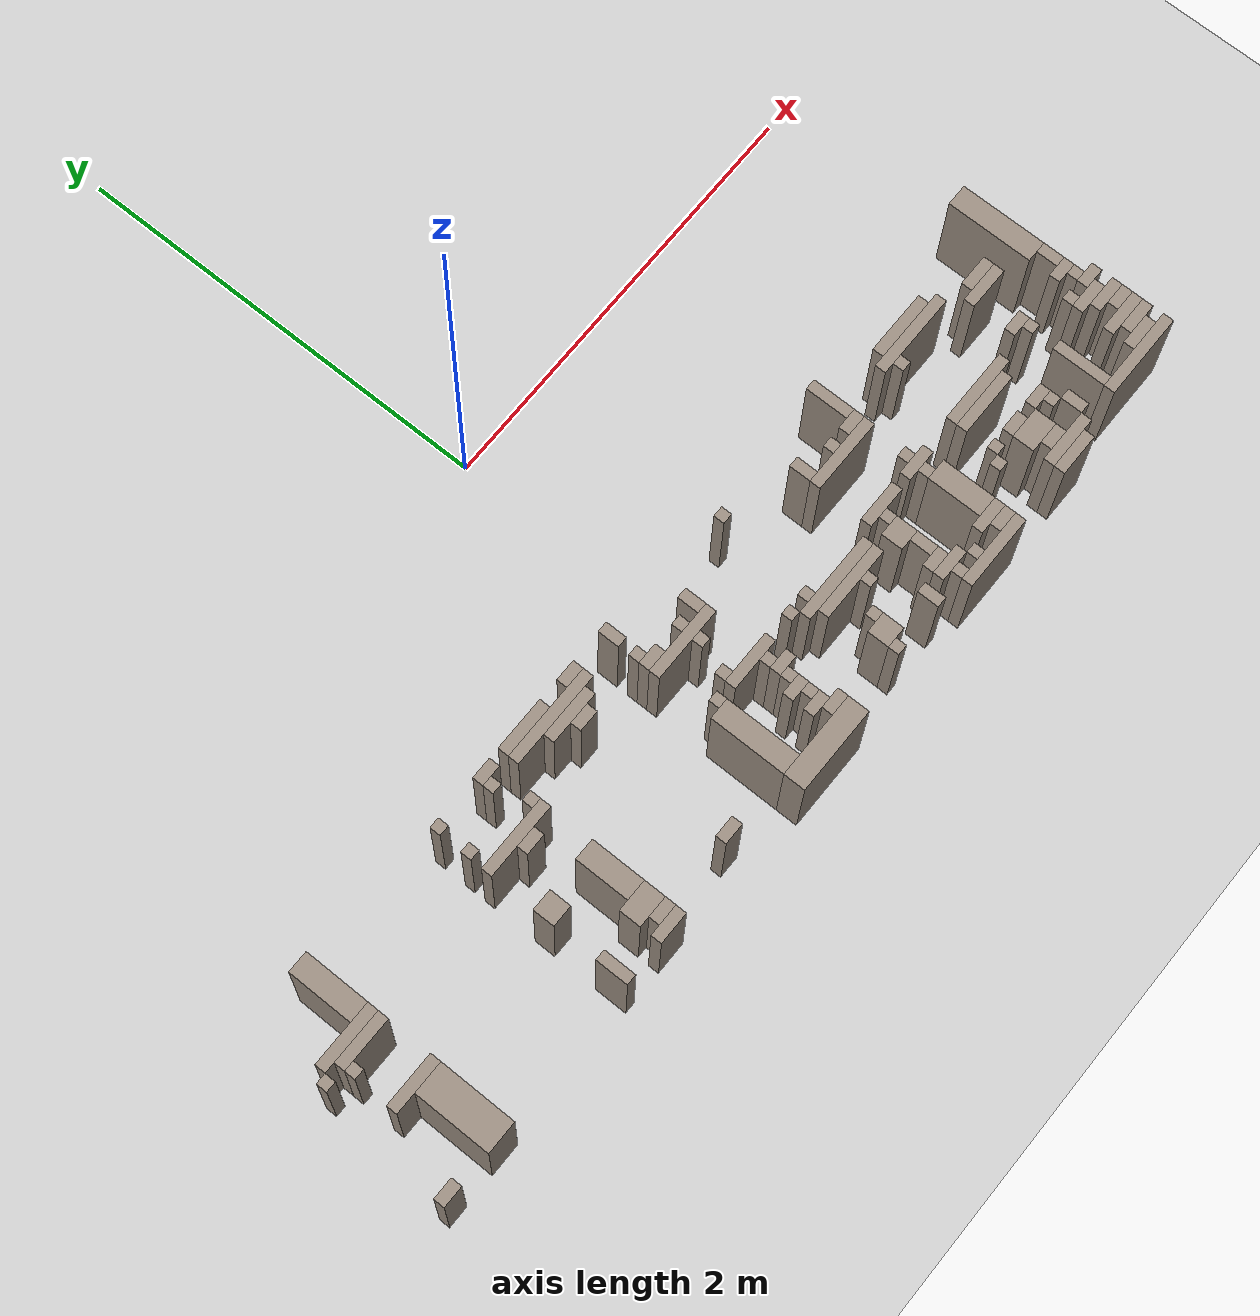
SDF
<sdf version="1.8">
 <world name="sala_real">
  <model name="ground_plane">
   <static>true</static>
   <link name="link">
    <collision name="col">
     <geometry><plane><normal>0 0 1</normal><size>100 100</size></plane></geometry>
    </collision>
    <visual name="vis">
     <geometry><plane><normal>0 0 1</normal><size>100 100</size></plane></geometry>
     <material><ambient>0.8 0.8 0.8 1</ambient><diffuse>0.8 0.8 0.8 1</diffuse></material>
    </visual>
   </link>
  </model>
  <model name="wall_206">
   <static>true</static>
   <pose>-1.310 -0.988 0.250 0 0 0</pose>
   <link name="link">
    <collision name="col"><geometry><box><size>0.050 0.050 0.500</size></box></geometry></collision>
    <visual name="vis">
     <geometry><box><size>0.050 0.050 0.500</size></box></geometry>
     <material><ambient>0.6 0.55 0.5 1</ambient><diffuse>0.6 0.55 0.5 1</diffuse></material>
    </visual>
   </link>
  </model>
  <model name="wall_207">
   <static>true</static>
   <pose>-0.310 -1.013 0.250 0 0 0</pose>
   <link name="link">
    <collision name="col"><geometry><box><size>0.050 0.100 0.500</size></box></geometry></collision>
    <visual name="vis">
     <geometry><box><size>0.050 0.100 0.500</size></box></geometry>
     <material><ambient>0.6 0.55 0.5 1</ambient><diffuse>0.6 0.55 0.5 1</diffuse></material>
    </visual>
   </link>
  </model>
  <model name="wall_217">
   <static>true</static>
   <pose>-0.110 -1.188 0.250 0 0 0</pose>
   <link name="link">
    <collision name="col"><geometry><box><size>0.050 0.050 0.500</size></box></geometry></collision>
    <visual name="vis">
     <geometry><box><size>0.050 0.050 0.500</size></box></geometry>
     <material><ambient>0.6 0.55 0.5 1</ambient><diffuse>0.6 0.55 0.5 1</diffuse></material>
    </visual>
   </link>
  </model>
  <model name="wall_219">
   <static>true</static>
   <pose>0.990 -1.063 0.250 0 0 0</pose>
   <link name="link">
    <collision name="col"><geometry><box><size>0.050 0.200 0.500</size></box></geometry></collision>
    <visual name="vis">
     <geometry><box><size>0.050 0.200 0.500</size></box></geometry>
     <material><ambient>0.6 0.55 0.5 1</ambient><diffuse>0.6 0.55 0.5 1</diffuse></material>
    </visual>
   </link>
  </model>
  <model name="wall_221">
   <static>true</static>
   <pose>2.015 -1.113 0.250 0 0 0</pose>
   <link name="link">
    <collision name="col"><geometry><box><size>0.100 0.400 0.500</size></box></geometry></collision>
    <visual name="vis">
     <geometry><box><size>0.100 0.400 0.500</size></box></geometry>
     <material><ambient>0.6 0.55 0.5 1</ambient><diffuse>0.6 0.55 0.5 1</diffuse></material>
    </visual>
   </link>
  </model>
  <model name="wall_223">
   <static>true</static>
   <pose>-1.035 -0.988 0.250 0 0 0</pose>
   <link name="link">
    <collision name="col"><geometry><box><size>0.100 0.050 0.500</size></box></geometry></collision>
    <visual name="vis">
     <geometry><box><size>0.100 0.050 0.500</size></box></geometry>
     <material><ambient>0.6 0.55 0.5 1</ambient><diffuse>0.6 0.55 0.5 1</diffuse></material>
    </visual>
   </link>
  </model>
  <model name="wall_228">
   <static>true</static>
   <pose>2.040 -1.363 0.250 0 0 0</pose>
   <link name="link">
    <collision name="col"><geometry><box><size>0.050 0.100 0.500</size></box></geometry></collision>
    <visual name="vis">
     <geometry><box><size>0.050 0.100 0.500</size></box></geometry>
     <material><ambient>0.6 0.55 0.5 1</ambient><diffuse>0.6 0.55 0.5 1</diffuse></material>
    </visual>
   </link>
  </model>
  <model name="wall_231">
   <static>true</static>
   <pose>-2.110 -1.288 0.250 0 0 0</pose>
   <link name="link">
    <collision name="col"><geometry><box><size>0.250 0.050 0.500</size></box></geometry></collision>
    <visual name="vis">
     <geometry><box><size>0.250 0.050 0.500</size></box></geometry>
     <material><ambient>0.6 0.55 0.5 1</ambient><diffuse>0.6 0.55 0.5 1</diffuse></material>
    </visual>
   </link>
  </model>
  <model name="wall_232">
   <static>true</static>
   <pose>-0.285 -1.188 0.250 0 0 0</pose>
   <link name="link">
    <collision name="col"><geometry><box><size>0.100 0.050 0.500</size></box></geometry></collision>
    <visual name="vis">
     <geometry><box><size>0.100 0.050 0.500</size></box></geometry>
     <material><ambient>0.6 0.55 0.5 1</ambient><diffuse>0.6 0.55 0.5 1</diffuse></material>
    </visual>
   </link>
  </model>
  <model name="wall_233">
   <static>true</static>
   <pose>-0.010 -1.163 0.250 0 0 0</pose>
   <link name="link">
    <collision name="col"><geometry><box><size>0.050 0.100 0.500</size></box></geometry></collision>
    <visual name="vis">
     <geometry><box><size>0.050 0.100 0.500</size></box></geometry>
     <material><ambient>0.6 0.55 0.5 1</ambient><diffuse>0.6 0.55 0.5 1</diffuse></material>
    </visual>
   </link>
  </model>
  <model name="wall_235">
   <static>true</static>
   <pose>0.990 -1.438 0.250 0 0 0</pose>
   <link name="link">
    <collision name="col"><geometry><box><size>0.050 0.050 0.500</size></box></geometry></collision>
    <visual name="vis">
     <geometry><box><size>0.050 0.050 0.500</size></box></geometry>
     <material><ambient>0.6 0.55 0.5 1</ambient><diffuse>0.6 0.55 0.5 1</diffuse></material>
    </visual>
   </link>
  </model>
  <model name="wall_240">
   <static>true</static>
   <pose>-0.010 -1.538 0.250 0 0 0</pose>
   <link name="link">
    <collision name="col"><geometry><box><size>0.050 0.050 0.500</size></box></geometry></collision>
    <visual name="vis">
     <geometry><box><size>0.050 0.050 0.500</size></box></geometry>
     <material><ambient>0.6 0.55 0.5 1</ambient><diffuse>0.6 0.55 0.5 1</diffuse></material>
    </visual>
   </link>
  </model>
  <model name="wall_241">
   <static>true</static>
   <pose>1.740 -1.488 0.250 0 0 0</pose>
   <link name="link">
    <collision name="col"><geometry><box><size>0.050 0.050 0.500</size></box></geometry></collision>
    <visual name="vis">
     <geometry><box><size>0.050 0.050 0.500</size></box></geometry>
     <material><ambient>0.6 0.55 0.5 1</ambient><diffuse>0.6 0.55 0.5 1</diffuse></material>
    </visual>
   </link>
  </model>
  <model name="wall_244">
   <static>true</static>
   <pose>0.740 -1.538 0.250 0 0 0</pose>
   <link name="link">
    <collision name="col"><geometry><box><size>0.050 0.050 0.500</size></box></geometry></collision>
    <visual name="vis">
     <geometry><box><size>0.050 0.050 0.500</size></box></geometry>
     <material><ambient>0.6 0.55 0.5 1</ambient><diffuse>0.6 0.55 0.5 1</diffuse></material>
    </visual>
   </link>
  </model>
  <model name="wall_245">
   <static>true</static>
   <pose>2.065 -1.538 0.250 0 0 0</pose>
   <link name="link">
    <collision name="col"><geometry><box><size>0.100 0.050 0.500</size></box></geometry></collision>
    <visual name="vis">
     <geometry><box><size>0.100 0.050 0.500</size></box></geometry>
     <material><ambient>0.6 0.55 0.5 1</ambient><diffuse>0.6 0.55 0.5 1</diffuse></material>
    </visual>
   </link>
  </model>
  <model name="wall_247">
   <static>true</static>
   <pose>-0.010 -1.638 0.250 0 0 0</pose>
   <link name="link">
    <collision name="col"><geometry><box><size>0.050 0.050 0.500</size></box></geometry></collision>
    <visual name="vis">
     <geometry><box><size>0.050 0.050 0.500</size></box></geometry>
     <material><ambient>0.6 0.55 0.5 1</ambient><diffuse>0.6 0.55 0.5 1</diffuse></material>
    </visual>
   </link>
  </model>
  <model name="wall_250">
   <static>true</static>
   <pose>-1.310 -1.138 0.250 0 0 0</pose>
   <link name="link">
    <collision name="col"><geometry><box><size>0.050 0.050 0.500</size></box></geometry></collision>
    <visual name="vis">
     <geometry><box><size>0.050 0.050 0.500</size></box></geometry>
     <material><ambient>0.6 0.55 0.5 1</ambient><diffuse>0.6 0.55 0.5 1</diffuse></material>
    </visual>
   </link>
  </model>
  <model name="wall_251">
   <static>true</static>
   <pose>-0.035 -1.688 0.250 0 0 0</pose>
   <link name="link">
    <collision name="col"><geometry><box><size>0.100 0.050 0.500</size></box></geometry></collision>
    <visual name="vis">
     <geometry><box><size>0.100 0.050 0.500</size></box></geometry>
     <material><ambient>0.6 0.55 0.5 1</ambient><diffuse>0.6 0.55 0.5 1</diffuse></material>
    </visual>
   </link>
  </model>
  <model name="wall_253">
   <static>true</static>
   <pose>0.715 -1.613 0.250 0 0 0</pose>
   <link name="link">
    <collision name="col"><geometry><box><size>0.100 0.100 0.500</size></box></geometry></collision>
    <visual name="vis">
     <geometry><box><size>0.100 0.100 0.500</size></box></geometry>
     <material><ambient>0.6 0.55 0.5 1</ambient><diffuse>0.6 0.55 0.5 1</diffuse></material>
    </visual>
   </link>
  </model>
  <model name="wall_255">
   <static>true</static>
   <pose>2.040 -1.638 0.250 0 0 0</pose>
   <link name="link">
    <collision name="col"><geometry><box><size>0.150 0.050 0.500</size></box></geometry></collision>
    <visual name="vis">
     <geometry><box><size>0.150 0.050 0.500</size></box></geometry>
     <material><ambient>0.6 0.55 0.5 1</ambient><diffuse>0.6 0.55 0.5 1</diffuse></material>
    </visual>
   </link>
  </model>
  <model name="wall_257">
   <static>true</static>
   <pose>-1.035 -1.588 0.250 0 0 0</pose>
   <link name="link">
    <collision name="col"><geometry><box><size>0.100 0.250 0.500</size></box></geometry></collision>
    <visual name="vis">
     <geometry><box><size>0.100 0.250 0.500</size></box></geometry>
     <material><ambient>0.6 0.55 0.5 1</ambient><diffuse>0.6 0.55 0.5 1</diffuse></material>
    </visual>
   </link>
  </model>
  <model name="wall_258">
   <static>true</static>
   <pose>-0.635 -1.138 0.250 0 0 0</pose>
   <link name="link">
    <collision name="col"><geometry><box><size>0.100 0.050 0.500</size></box></geometry></collision>
    <visual name="vis">
     <geometry><box><size>0.100 0.050 0.500</size></box></geometry>
     <material><ambient>0.6 0.55 0.5 1</ambient><diffuse>0.6 0.55 0.5 1</diffuse></material>
    </visual>
   </link>
  </model>
  <model name="wall_259">
   <static>true</static>
   <pose>0.015 -1.588 0.250 0 0 0</pose>
   <link name="link">
    <collision name="col"><geometry><box><size>0.100 0.050 0.500</size></box></geometry></collision>
    <visual name="vis">
     <geometry><box><size>0.100 0.050 0.500</size></box></geometry>
     <material><ambient>0.6 0.55 0.5 1</ambient><diffuse>0.6 0.55 0.5 1</diffuse></material>
    </visual>
   </link>
  </model>
  <model name="wall_260">
   <static>true</static>
   <pose>0.990 -1.488 0.250 0 0 0</pose>
   <link name="link">
    <collision name="col"><geometry><box><size>0.150 0.050 0.500</size></box></geometry></collision>
    <visual name="vis">
     <geometry><box><size>0.150 0.050 0.500</size></box></geometry>
     <material><ambient>0.6 0.55 0.5 1</ambient><diffuse>0.6 0.55 0.5 1</diffuse></material>
    </visual>
   </link>
  </model>
  <model name="wall_262">
   <static>true</static>
   <pose>1.990 -1.588 0.250 0 0 0</pose>
   <link name="link">
    <collision name="col"><geometry><box><size>0.150 0.050 0.500</size></box></geometry></collision>
    <visual name="vis">
     <geometry><box><size>0.150 0.050 0.500</size></box></geometry>
     <material><ambient>0.6 0.55 0.5 1</ambient><diffuse>0.6 0.55 0.5 1</diffuse></material>
    </visual>
   </link>
  </model>
  <model name="wall_265">
   <static>true</static>
   <pose>-1.060 -1.763 0.250 0 0 0</pose>
   <link name="link">
    <collision name="col"><geometry><box><size>0.150 0.100 0.500</size></box></geometry></collision>
    <visual name="vis">
     <geometry><box><size>0.150 0.100 0.500</size></box></geometry>
     <material><ambient>0.6 0.55 0.5 1</ambient><diffuse>0.6 0.55 0.5 1</diffuse></material>
    </visual>
   </link>
  </model>
  <model name="wall_266">
   <static>true</static>
   <pose>0.340 -1.038 0.250 0 0 0</pose>
   <link name="link">
    <collision name="col"><geometry><box><size>0.050 0.050 0.500</size></box></geometry></collision>
    <visual name="vis">
     <geometry><box><size>0.050 0.050 0.500</size></box></geometry>
     <material><ambient>0.6 0.55 0.5 1</ambient><diffuse>0.6 0.55 0.5 1</diffuse></material>
    </visual>
   </link>
  </model>
  <model name="wall_267">
   <static>true</static>
   <pose>0.740 -1.713 0.250 0 0 0</pose>
   <link name="link">
    <collision name="col"><geometry><box><size>0.050 0.100 0.500</size></box></geometry></collision>
    <visual name="vis">
     <geometry><box><size>0.050 0.100 0.500</size></box></geometry>
     <material><ambient>0.6 0.55 0.5 1</ambient><diffuse>0.6 0.55 0.5 1</diffuse></material>
    </visual>
   </link>
  </model>
  <model name="wall_268">
   <static>true</static>
   <pose>0.840 -1.188 0.250 0 0 0</pose>
   <link name="link">
    <collision name="col"><geometry><box><size>0.050 0.050 0.500</size></box></geometry></collision>
    <visual name="vis">
     <geometry><box><size>0.050 0.050 0.500</size></box></geometry>
     <material><ambient>0.6 0.55 0.5 1</ambient><diffuse>0.6 0.55 0.5 1</diffuse></material>
    </visual>
   </link>
  </model>
  <model name="wall_269">
   <static>true</static>
   <pose>1.015 -1.688 0.250 0 0 0</pose>
   <link name="link">
    <collision name="col"><geometry><box><size>0.100 0.250 0.500</size></box></geometry></collision>
    <visual name="vis">
     <geometry><box><size>0.100 0.250 0.500</size></box></geometry>
     <material><ambient>0.6 0.55 0.5 1</ambient><diffuse>0.6 0.55 0.5 1</diffuse></material>
    </visual>
   </link>
  </model>
  <model name="wall_273">
   <static>true</static>
   <pose>-1.160 -1.238 0.250 0 0 0</pose>
   <link name="link">
    <collision name="col"><geometry><box><size>0.350 0.050 0.500</size></box></geometry></collision>
    <visual name="vis">
     <geometry><box><size>0.350 0.050 0.500</size></box></geometry>
     <material><ambient>0.6 0.55 0.5 1</ambient><diffuse>0.6 0.55 0.5 1</diffuse></material>
    </visual>
   </link>
  </model>
  <model name="wall_274">
   <static>true</static>
   <pose>0.365 -1.813 0.250 0 0 0</pose>
   <link name="link">
    <collision name="col"><geometry><box><size>0.100 0.100 0.500</size></box></geometry></collision>
    <visual name="vis">
     <geometry><box><size>0.100 0.100 0.500</size></box></geometry>
     <material><ambient>0.6 0.55 0.5 1</ambient><diffuse>0.6 0.55 0.5 1</diffuse></material>
    </visual>
   </link>
  </model>
  <model name="wall_279">
   <static>true</static>
   <pose>1.390 -1.763 0.250 0 0 0</pose>
   <link name="link">
    <collision name="col"><geometry><box><size>0.150 0.100 0.500</size></box></geometry></collision>
    <visual name="vis">
     <geometry><box><size>0.150 0.100 0.500</size></box></geometry>
     <material><ambient>0.6 0.55 0.5 1</ambient><diffuse>0.6 0.55 0.5 1</diffuse></material>
    </visual>
   </link>
  </model>
  <model name="wall_285">
   <static>true</static>
   <pose>-2.335 -1.888 0.250 0 0 0</pose>
   <link name="link">
    <collision name="col"><geometry><box><size>0.100 0.050 0.500</size></box></geometry></collision>
    <visual name="vis">
     <geometry><box><size>0.100 0.050 0.500</size></box></geometry>
     <material><ambient>0.6 0.55 0.5 1</ambient><diffuse>0.6 0.55 0.5 1</diffuse></material>
    </visual>
   </link>
  </model>
  <model name="wall_323">
   <static>true</static>
   <pose>1.715 -1.438 0.250 0 0 0</pose>
   <link name="link">
    <collision name="col"><geometry><box><size>0.100 0.050 0.500</size></box></geometry></collision>
    <visual name="vis">
     <geometry><box><size>0.100 0.050 0.500</size></box></geometry>
     <material><ambient>0.6 0.55 0.5 1</ambient><diffuse>0.6 0.55 0.5 1</diffuse></material>
    </visual>
   </link>
  </model>
  <model name="wall_375">
   <static>true</static>
   <pose>1.540 -1.738 0.250 0 0 0</pose>
   <link name="link">
    <collision name="col"><geometry><box><size>0.050 0.050 0.500</size></box></geometry></collision>
    <visual name="vis">
     <geometry><box><size>0.050 0.050 0.500</size></box></geometry>
     <material><ambient>0.6 0.55 0.5 1</ambient><diffuse>0.6 0.55 0.5 1</diffuse></material>
    </visual>
   </link>
  </model>
  <model name="wall_376">
   <static>true</static>
   <pose>-0.535 -0.988 0.250 0 0 0</pose>
   <link name="link">
    <collision name="col"><geometry><box><size>0.100 0.050 0.500</size></box></geometry></collision>
    <visual name="vis">
     <geometry><box><size>0.100 0.050 0.500</size></box></geometry>
     <material><ambient>0.6 0.55 0.5 1</ambient><diffuse>0.6 0.55 0.5 1</diffuse></material>
    </visual>
   </link>
  </model>
  <model name="wall_377">
   <static>true</static>
   <pose>1.940 -1.538 0.250 0 0 0</pose>
   <link name="link">
    <collision name="col"><geometry><box><size>0.050 0.050 0.500</size></box></geometry></collision>
    <visual name="vis">
     <geometry><box><size>0.050 0.050 0.500</size></box></geometry>
     <material><ambient>0.6 0.55 0.5 1</ambient><diffuse>0.6 0.55 0.5 1</diffuse></material>
    </visual>
   </link>
  </model>
  <model name="wall_386">
   <static>true</static>
   <pose>-0.310 -1.138 0.250 0 0 0</pose>
   <link name="link">
    <collision name="col"><geometry><box><size>0.050 0.050 0.500</size></box></geometry></collision>
    <visual name="vis">
     <geometry><box><size>0.050 0.050 0.500</size></box></geometry>
     <material><ambient>0.6 0.55 0.5 1</ambient><diffuse>0.6 0.55 0.5 1</diffuse></material>
    </visual>
   </link>
  </model>
  <model name="wall_393">
   <static>true</static>
   <pose>-2.310 -1.288 0.250 0 0 0</pose>
   <link name="link">
    <collision name="col"><geometry><box><size>0.050 0.050 0.500</size></box></geometry></collision>
    <visual name="vis">
     <geometry><box><size>0.050 0.050 0.500</size></box></geometry>
     <material><ambient>0.6 0.55 0.5 1</ambient><diffuse>0.6 0.55 0.5 1</diffuse></material>
    </visual>
   </link>
  </model>
  <model name="wall_412">
   <static>true</static>
   <pose>-1.010 -1.188 0.250 0 0 0</pose>
   <link name="link">
    <collision name="col"><geometry><box><size>0.050 0.050 0.500</size></box></geometry></collision>
    <visual name="vis">
     <geometry><box><size>0.050 0.050 0.500</size></box></geometry>
     <material><ambient>0.6 0.55 0.5 1</ambient><diffuse>0.6 0.55 0.5 1</diffuse></material>
    </visual>
   </link>
  </model>
  <model name="wall_433">
   <static>true</static>
   <pose>0.340 -1.888 0.250 0 0 0</pose>
   <link name="link">
    <collision name="col"><geometry><box><size>0.050 0.050 0.500</size></box></geometry></collision>
    <visual name="vis">
     <geometry><box><size>0.050 0.050 0.500</size></box></geometry>
     <material><ambient>0.6 0.55 0.5 1</ambient><diffuse>0.6 0.55 0.5 1</diffuse></material>
    </visual>
   </link>
  </model>
  <model name="wall_455">
   <static>true</static>
   <pose>0.290 -1.488 0.250 0 0 0</pose>
   <link name="link">
    <collision name="col"><geometry><box><size>0.050 0.050 0.500</size></box></geometry></collision>
    <visual name="vis">
     <geometry><box><size>0.050 0.050 0.500</size></box></geometry>
     <material><ambient>0.6 0.55 0.5 1</ambient><diffuse>0.6 0.55 0.5 1</diffuse></material>
    </visual>
   </link>
  </model>
  <model name="wall_456">
   <static>true</static>
   <pose>0.390 -1.738 0.250 0 0 0</pose>
   <link name="link">
    <collision name="col"><geometry><box><size>0.050 0.050 0.500</size></box></geometry></collision>
    <visual name="vis">
     <geometry><box><size>0.050 0.050 0.500</size></box></geometry>
     <material><ambient>0.6 0.55 0.5 1</ambient><diffuse>0.6 0.55 0.5 1</diffuse></material>
    </visual>
   </link>
  </model>
  <model name="wall_481">
   <static>true</static>
   <pose>-0.635 -1.838 0.250 0 0 0</pose>
   <link name="link">
    <collision name="col"><geometry><box><size>0.100 0.050 0.500</size></box></geometry></collision>
    <visual name="vis">
     <geometry><box><size>0.100 0.050 0.500</size></box></geometry>
     <material><ambient>0.6 0.55 0.5 1</ambient><diffuse>0.6 0.55 0.5 1</diffuse></material>
    </visual>
   </link>
  </model>
  <model name="wall_490">
   <static>true</static>
   <pose>-1.035 -1.838 0.250 0 0 0</pose>
   <link name="link">
    <collision name="col"><geometry><box><size>0.100 0.050 0.500</size></box></geometry></collision>
    <visual name="vis">
     <geometry><box><size>0.100 0.050 0.500</size></box></geometry>
     <material><ambient>0.6 0.55 0.5 1</ambient><diffuse>0.6 0.55 0.5 1</diffuse></material>
    </visual>
   </link>
  </model>
  <model name="wall_497">
   <static>true</static>
   <pose>-1.310 -1.838 0.250 0 0 0</pose>
   <link name="link">
    <collision name="col"><geometry><box><size>0.050 0.150 0.500</size></box></geometry></collision>
    <visual name="vis">
     <geometry><box><size>0.050 0.150 0.500</size></box></geometry>
     <material><ambient>0.6 0.55 0.5 1</ambient><diffuse>0.6 0.55 0.5 1</diffuse></material>
    </visual>
   </link>
  </model>
  <model name="wall_514">
   <static>true</static>
   <pose>2.015 -1.438 0.250 0 0 0</pose>
   <link name="link">
    <collision name="col"><geometry><box><size>0.100 0.050 0.500</size></box></geometry></collision>
    <visual name="vis">
     <geometry><box><size>0.100 0.050 0.500</size></box></geometry>
     <material><ambient>0.6 0.55 0.5 1</ambient><diffuse>0.6 0.55 0.5 1</diffuse></material>
    </visual>
   </link>
  </model>
  <model name="wall_518">
   <static>true</static>
   <pose>1.515 -1.688 0.250 0 0 0</pose>
   <link name="link">
    <collision name="col"><geometry><box><size>0.100 0.050 0.500</size></box></geometry></collision>
    <visual name="vis">
     <geometry><box><size>0.100 0.050 0.500</size></box></geometry>
     <material><ambient>0.6 0.55 0.5 1</ambient><diffuse>0.6 0.55 0.5 1</diffuse></material>
    </visual>
   </link>
  </model>
  <model name="wall_527">
   <static>true</static>
   <pose>-2.210 -1.338 0.250 0 0 0</pose>
   <link name="link">
    <collision name="col"><geometry><box><size>0.050 0.050 0.500</size></box></geometry></collision>
    <visual name="vis">
     <geometry><box><size>0.050 0.050 0.500</size></box></geometry>
     <material><ambient>0.6 0.55 0.5 1</ambient><diffuse>0.6 0.55 0.5 1</diffuse></material>
    </visual>
   </link>
  </model>
  <model name="wall_539">
   <static>true</static>
   <pose>-1.285 -1.513 0.250 0 0 0</pose>
   <link name="link">
    <collision name="col"><geometry><box><size>0.100 0.100 0.500</size></box></geometry></collision>
    <visual name="vis">
     <geometry><box><size>0.100 0.100 0.500</size></box></geometry>
     <material><ambient>0.6 0.55 0.5 1</ambient><diffuse>0.6 0.55 0.5 1</diffuse></material>
    </visual>
   </link>
  </model>
  <model name="wall_543">
   <static>true</static>
   <pose>2.065 -1.688 0.250 0 0 0</pose>
   <link name="link">
    <collision name="col"><geometry><box><size>0.100 0.050 0.500</size></box></geometry></collision>
    <visual name="vis">
     <geometry><box><size>0.100 0.050 0.500</size></box></geometry>
     <material><ambient>0.6 0.55 0.5 1</ambient><diffuse>0.6 0.55 0.5 1</diffuse></material>
    </visual>
   </link>
  </model>
  <model name="wall_549">
   <static>true</static>
   <pose>2.040 -1.488 0.250 0 0 0</pose>
   <link name="link">
    <collision name="col"><geometry><box><size>0.050 0.050 0.500</size></box></geometry></collision>
    <visual name="vis">
     <geometry><box><size>0.050 0.050 0.500</size></box></geometry>
     <material><ambient>0.6 0.55 0.5 1</ambient><diffuse>0.6 0.55 0.5 1</diffuse></material>
    </visual>
   </link>
  </model>
  <model name="wall_556">
   <static>true</static>
   <pose>-0.260 -1.488 0.250 0 0 0</pose>
   <link name="link">
    <collision name="col"><geometry><box><size>0.050 0.050 0.500</size></box></geometry></collision>
    <visual name="vis">
     <geometry><box><size>0.050 0.050 0.500</size></box></geometry>
     <material><ambient>0.6 0.55 0.5 1</ambient><diffuse>0.6 0.55 0.5 1</diffuse></material>
    </visual>
   </link>
  </model>
  <model name="wall_560">
   <static>true</static>
   <pose>-0.160 -1.438 0.250 0 0 0</pose>
   <link name="link">
    <collision name="col"><geometry><box><size>0.050 0.050 0.500</size></box></geometry></collision>
    <visual name="vis">
     <geometry><box><size>0.050 0.050 0.500</size></box></geometry>
     <material><ambient>0.6 0.55 0.5 1</ambient><diffuse>0.6 0.55 0.5 1</diffuse></material>
    </visual>
   </link>
  </model>
  <model name="wall_563">
   <static>true</static>
   <pose>-0.010 -1.738 0.250 0 0 0</pose>
   <link name="link">
    <collision name="col"><geometry><box><size>0.050 0.050 0.500</size></box></geometry></collision>
    <visual name="vis">
     <geometry><box><size>0.050 0.050 0.500</size></box></geometry>
     <material><ambient>0.6 0.55 0.5 1</ambient><diffuse>0.6 0.55 0.5 1</diffuse></material>
    </visual>
   </link>
  </model>
  <model name="wall_564">
   <static>true</static>
   <pose>0.190 -1.488 0.250 0 0 0</pose>
   <link name="link">
    <collision name="col"><geometry><box><size>0.050 0.050 0.500</size></box></geometry></collision>
    <visual name="vis">
     <geometry><box><size>0.050 0.050 0.500</size></box></geometry>
     <material><ambient>0.6 0.55 0.5 1</ambient><diffuse>0.6 0.55 0.5 1</diffuse></material>
    </visual>
   </link>
  </model>
  <model name="wall_565">
   <static>true</static>
   <pose>-0.110 -1.288 0.250 0 0 0</pose>
   <link name="link">
    <collision name="col"><geometry><box><size>0.050 0.050 0.500</size></box></geometry></collision>
    <visual name="vis">
     <geometry><box><size>0.050 0.050 0.500</size></box></geometry>
     <material><ambient>0.6 0.55 0.5 1</ambient><diffuse>0.6 0.55 0.5 1</diffuse></material>
    </visual>
   </link>
  </model>
  <model name="wall_566">
   <static>true</static>
   <pose>0.015 -1.838 0.250 0 0 0</pose>
   <link name="link">
    <collision name="col"><geometry><box><size>0.100 0.050 0.500</size></box></geometry></collision>
    <visual name="vis">
     <geometry><box><size>0.100 0.050 0.500</size></box></geometry>
     <material><ambient>0.6 0.55 0.5 1</ambient><diffuse>0.6 0.55 0.5 1</diffuse></material>
    </visual>
   </link>
  </model>
  <model name="wall_576">
   <static>true</static>
   <pose>1.240 -1.688 0.250 0 0 0</pose>
   <link name="link">
    <collision name="col"><geometry><box><size>0.050 0.050 0.500</size></box></geometry></collision>
    <visual name="vis">
     <geometry><box><size>0.050 0.050 0.500</size></box></geometry>
     <material><ambient>0.6 0.55 0.5 1</ambient><diffuse>0.6 0.55 0.5 1</diffuse></material>
    </visual>
   </link>
  </model>
  <model name="wall_587">
   <static>true</static>
   <pose>-1.060 -1.038 0.250 0 0 0</pose>
   <link name="link">
    <collision name="col"><geometry><box><size>0.050 0.050 0.500</size></box></geometry></collision>
    <visual name="vis">
     <geometry><box><size>0.050 0.050 0.500</size></box></geometry>
     <material><ambient>0.6 0.55 0.5 1</ambient><diffuse>0.6 0.55 0.5 1</diffuse></material>
    </visual>
   </link>
  </model>
  <model name="wall_594">
   <static>true</static>
   <pose>1.190 -1.738 0.250 0 0 0</pose>
   <link name="link">
    <collision name="col"><geometry><box><size>0.050 0.050 0.500</size></box></geometry></collision>
    <visual name="vis">
     <geometry><box><size>0.050 0.050 0.500</size></box></geometry>
     <material><ambient>0.6 0.55 0.5 1</ambient><diffuse>0.6 0.55 0.5 1</diffuse></material>
    </visual>
   </link>
  </model>
  <model name="wall_595">
   <static>true</static>
   <pose>0.490 -1.638 0.250 0 0 0</pose>
   <link name="link">
    <collision name="col"><geometry><box><size>0.050 0.050 0.500</size></box></geometry></collision>
    <visual name="vis">
     <geometry><box><size>0.050 0.050 0.500</size></box></geometry>
     <material><ambient>0.6 0.55 0.5 1</ambient><diffuse>0.6 0.55 0.5 1</diffuse></material>
    </visual>
   </link>
  </model>
  <model name="wall_598">
   <static>true</static>
   <pose>1.740 -1.738 0.250 0 0 0</pose>
   <link name="link">
    <collision name="col"><geometry><box><size>0.050 0.250 0.500</size></box></geometry></collision>
    <visual name="vis">
     <geometry><box><size>0.050 0.250 0.500</size></box></geometry>
     <material><ambient>0.6 0.55 0.5 1</ambient><diffuse>0.6 0.55 0.5 1</diffuse></material>
    </visual>
   </link>
  </model>
  <model name="wall_631">
   <static>true</static>
   <pose>0.740 -1.888 0.250 0 0 0</pose>
   <link name="link">
    <collision name="col"><geometry><box><size>0.050 0.050 0.500</size></box></geometry></collision>
    <visual name="vis">
     <geometry><box><size>0.050 0.050 0.500</size></box></geometry>
     <material><ambient>0.6 0.55 0.5 1</ambient><diffuse>0.6 0.55 0.5 1</diffuse></material>
    </visual>
   </link>
  </model>
  <model name="wall_670">
   <static>true</static>
   <pose>0.690 -1.163 0.250 0 0 0</pose>
   <link name="link">
    <collision name="col"><geometry><box><size>0.050 0.100 0.500</size></box></geometry></collision>
    <visual name="vis">
     <geometry><box><size>0.050 0.100 0.500</size></box></geometry>
     <material><ambient>0.6 0.55 0.5 1</ambient><diffuse>0.6 0.55 0.5 1</diffuse></material>
    </visual>
   </link>
  </model>
  <model name="wall_686">
   <static>true</static>
   <pose>1.415 -1.838 0.250 0 0 0</pose>
   <link name="link">
    <collision name="col"><geometry><box><size>0.100 0.050 0.500</size></box></geometry></collision>
    <visual name="vis">
     <geometry><box><size>0.100 0.050 0.500</size></box></geometry>
     <material><ambient>0.6 0.55 0.5 1</ambient><diffuse>0.6 0.55 0.5 1</diffuse></material>
    </visual>
   </link>
  </model>
  <model name="wall_814">
   <static>true</static>
   <pose>0.715 -1.788 0.250 0 0 0</pose>
   <link name="link">
    <collision name="col"><geometry><box><size>0.100 0.050 0.500</size></box></geometry></collision>
    <visual name="vis">
     <geometry><box><size>0.100 0.050 0.500</size></box></geometry>
     <material><ambient>0.6 0.55 0.5 1</ambient><diffuse>0.6 0.55 0.5 1</diffuse></material>
    </visual>
   </link>
  </model>
  <model name="wall_842">
   <static>true</static>
   <pose>0.840 -1.888 0.250 0 0 0</pose>
   <link name="link">
    <collision name="col"><geometry><box><size>0.050 0.050 0.500</size></box></geometry></collision>
    <visual name="vis">
     <geometry><box><size>0.050 0.050 0.500</size></box></geometry>
     <material><ambient>0.6 0.55 0.5 1</ambient><diffuse>0.6 0.55 0.5 1</diffuse></material>
    </visual>
   </link>
  </model>
  <model name="wall_843">
   <static>true</static>
   <pose>-0.035 -1.788 0.250 0 0 0</pose>
   <link name="link">
    <collision name="col"><geometry><box><size>0.100 0.050 0.500</size></box></geometry></collision>
    <visual name="vis">
     <geometry><box><size>0.100 0.050 0.500</size></box></geometry>
     <material><ambient>0.6 0.55 0.5 1</ambient><diffuse>0.6 0.55 0.5 1</diffuse></material>
    </visual>
   </link>
  </model>
  <model name="wall_884">
   <static>true</static>
   <pose>0.840 -1.238 0.250 0 0 0</pose>
   <link name="link">
    <collision name="col"><geometry><box><size>0.350 0.050 0.500</size></box></geometry></collision>
    <visual name="vis">
     <geometry><box><size>0.350 0.050 0.500</size></box></geometry>
     <material><ambient>0.6 0.55 0.5 1</ambient><diffuse>0.6 0.55 0.5 1</diffuse></material>
    </visual>
   </link>
  </model>
  <model name="wall_892">
   <static>true</static>
   <pose>-0.160 -1.238 0.250 0 0 0</pose>
   <link name="link">
    <collision name="col"><geometry><box><size>0.350 0.050 0.500</size></box></geometry></collision>
    <visual name="vis">
     <geometry><box><size>0.350 0.050 0.500</size></box></geometry>
     <material><ambient>0.6 0.55 0.5 1</ambient><diffuse>0.6 0.55 0.5 1</diffuse></material>
    </visual>
   </link>
  </model>
  <model name="wall_903">
   <static>true</static>
   <pose>0.765 -1.488 0.250 0 0 0</pose>
   <link name="link">
    <collision name="col"><geometry><box><size>0.200 0.050 0.500</size></box></geometry></collision>
    <visual name="vis">
     <geometry><box><size>0.200 0.050 0.500</size></box></geometry>
     <material><ambient>0.6 0.55 0.5 1</ambient><diffuse>0.6 0.55 0.5 1</diffuse></material>
    </visual>
   </link>
  </model>
  <model name="wall_904">
   <static>true</static>
   <pose>0.965 -1.188 0.250 0 0 0</pose>
   <link name="link">
    <collision name="col"><geometry><box><size>0.100 0.050 0.500</size></box></geometry></collision>
    <visual name="vis">
     <geometry><box><size>0.100 0.050 0.500</size></box></geometry>
     <material><ambient>0.6 0.55 0.5 1</ambient><diffuse>0.6 0.55 0.5 1</diffuse></material>
    </visual>
   </link>
  </model>
  <model name="wall_912">
   <static>true</static>
   <pose>-2.060 -1.738 0.250 0 0 0</pose>
   <link name="link">
    <collision name="col"><geometry><box><size>0.150 0.350 0.500</size></box></geometry></collision>
    <visual name="vis">
     <geometry><box><size>0.150 0.350 0.500</size></box></geometry>
     <material><ambient>0.6 0.55 0.5 1</ambient><diffuse>0.6 0.55 0.5 1</diffuse></material>
    </visual>
   </link>
  </model>
  <model name="wall_916">
   <static>true</static>
   <pose>1.590 -1.813 0.250 0 0 0</pose>
   <link name="link">
    <collision name="col"><geometry><box><size>0.050 0.100 0.500</size></box></geometry></collision>
    <visual name="vis">
     <geometry><box><size>0.050 0.100 0.500</size></box></geometry>
     <material><ambient>0.6 0.55 0.5 1</ambient><diffuse>0.6 0.55 0.5 1</diffuse></material>
    </visual>
   </link>
  </model>
  <model name="wall_918">
   <static>true</static>
   <pose>1.990 -1.838 0.250 0 0 0</pose>
   <link name="link">
    <collision name="col"><geometry><box><size>0.150 0.050 0.500</size></box></geometry></collision>
    <visual name="vis">
     <geometry><box><size>0.150 0.050 0.500</size></box></geometry>
     <material><ambient>0.6 0.55 0.5 1</ambient><diffuse>0.6 0.55 0.5 1</diffuse></material>
    </visual>
   </link>
  </model>
  <model name="wall_921">
   <static>true</static>
   <pose>-2.035 -1.063 0.250 0 0 0</pose>
   <link name="link">
    <collision name="col"><geometry><box><size>0.100 0.300 0.500</size></box></geometry></collision>
    <visual name="vis">
     <geometry><box><size>0.100 0.300 0.500</size></box></geometry>
     <material><ambient>0.6 0.55 0.5 1</ambient><diffuse>0.6 0.55 0.5 1</diffuse></material>
    </visual>
   </link>
  </model>
  <model name="wall_924">
   <static>true</static>
   <pose>-0.285 -1.688 0.250 0 0 0</pose>
   <link name="link">
    <collision name="col"><geometry><box><size>0.100 0.350 0.500</size></box></geometry></collision>
    <visual name="vis">
     <geometry><box><size>0.100 0.350 0.500</size></box></geometry>
     <material><ambient>0.6 0.55 0.5 1</ambient><diffuse>0.6 0.55 0.5 1</diffuse></material>
    </visual>
   </link>
  </model>
  <model name="wall_927">
   <static>true</static>
   <pose>-0.810 -0.988 0.250 0 0 0</pose>
   <link name="link">
    <collision name="col"><geometry><box><size>0.250 0.050 0.500</size></box></geometry></collision>
    <visual name="vis">
     <geometry><box><size>0.250 0.050 0.500</size></box></geometry>
     <material><ambient>0.6 0.55 0.5 1</ambient><diffuse>0.6 0.55 0.5 1</diffuse></material>
    </visual>
   </link>
  </model>
  <model name="wall_930">
   <static>true</static>
   <pose>0.990 -1.538 0.250 0 0 0</pose>
   <link name="link">
    <collision name="col"><geometry><box><size>0.050 0.050 0.500</size></box></geometry></collision>
    <visual name="vis">
     <geometry><box><size>0.050 0.050 0.500</size></box></geometry>
     <material><ambient>0.6 0.55 0.5 1</ambient><diffuse>0.6 0.55 0.5 1</diffuse></material>
    </visual>
   </link>
  </model>
  <model name="wall_932">
   <static>true</static>
   <pose>-0.710 -1.038 0.250 0 0 0</pose>
   <link name="link">
    <collision name="col"><geometry><box><size>0.450 0.050 0.500</size></box></geometry></collision>
    <visual name="vis">
     <geometry><box><size>0.450 0.050 0.500</size></box></geometry>
     <material><ambient>0.6 0.55 0.5 1</ambient><diffuse>0.6 0.55 0.5 1</diffuse></material>
    </visual>
   </link>
  </model>
  <model name="wall_935">
   <static>true</static>
   <pose>-0.660 -1.088 0.250 0 0 0</pose>
   <link name="link">
    <collision name="col"><geometry><box><size>0.250 0.050 0.500</size></box></geometry></collision>
    <visual name="vis">
     <geometry><box><size>0.250 0.050 0.500</size></box></geometry>
     <material><ambient>0.6 0.55 0.5 1</ambient><diffuse>0.6 0.55 0.5 1</diffuse></material>
    </visual>
   </link>
  </model>
  <model name="wall_936">
   <static>true</static>
   <pose>1.415 -1.088 0.250 0 0 0</pose>
   <link name="link">
    <collision name="col"><geometry><box><size>0.300 0.050 0.500</size></box></geometry></collision>
    <visual name="vis">
     <geometry><box><size>0.300 0.050 0.500</size></box></geometry>
     <material><ambient>0.6 0.55 0.5 1</ambient><diffuse>0.6 0.55 0.5 1</diffuse></material>
    </visual>
   </link>
  </model>
  <model name="wall_940">
   <static>true</static>
   <pose>1.415 -1.138 0.250 0 0 0</pose>
   <link name="link">
    <collision name="col"><geometry><box><size>0.400 0.050 0.500</size></box></geometry></collision>
    <visual name="vis">
     <geometry><box><size>0.400 0.050 0.500</size></box></geometry>
     <material><ambient>0.6 0.55 0.5 1</ambient><diffuse>0.6 0.55 0.5 1</diffuse></material>
    </visual>
   </link>
  </model>
  <model name="wall_943">
   <static>true</static>
   <pose>1.290 -1.188 0.250 0 0 0</pose>
   <link name="link">
    <collision name="col"><geometry><box><size>0.050 0.050 0.500</size></box></geometry></collision>
    <visual name="vis">
     <geometry><box><size>0.050 0.050 0.500</size></box></geometry>
     <material><ambient>0.6 0.55 0.5 1</ambient><diffuse>0.6 0.55 0.5 1</diffuse></material>
    </visual>
   </link>
  </model>
  <model name="wall_944">
   <static>true</static>
   <pose>1.790 -1.188 0.250 0 0 0</pose>
   <link name="link">
    <collision name="col"><geometry><box><size>0.150 0.050 0.500</size></box></geometry></collision>
    <visual name="vis">
     <geometry><box><size>0.150 0.050 0.500</size></box></geometry>
     <material><ambient>0.6 0.55 0.5 1</ambient><diffuse>0.6 0.55 0.5 1</diffuse></material>
    </visual>
   </link>
  </model>
  <model name="wall_946">
   <static>true</static>
   <pose>-2.135 -1.238 0.250 0 0 0</pose>
   <link name="link">
    <collision name="col"><geometry><box><size>0.300 0.050 0.500</size></box></geometry></collision>
    <visual name="vis">
     <geometry><box><size>0.300 0.050 0.500</size></box></geometry>
     <material><ambient>0.6 0.55 0.5 1</ambient><diffuse>0.6 0.55 0.5 1</diffuse></material>
    </visual>
   </link>
  </model>
  <model name="wall_948">
   <static>true</static>
   <pose>1.765 -1.238 0.250 0 0 0</pose>
   <link name="link">
    <collision name="col"><geometry><box><size>0.200 0.050 0.500</size></box></geometry></collision>
    <visual name="vis">
     <geometry><box><size>0.200 0.050 0.500</size></box></geometry>
     <material><ambient>0.6 0.55 0.5 1</ambient><diffuse>0.6 0.55 0.5 1</diffuse></material>
    </visual>
   </link>
  </model>
  <model name="wall_951">
   <static>true</static>
   <pose>-2.110 -1.538 0.250 0 0 0</pose>
   <link name="link">
    <collision name="col"><geometry><box><size>0.250 0.050 0.500</size></box></geometry></collision>
    <visual name="vis">
     <geometry><box><size>0.250 0.050 0.500</size></box></geometry>
     <material><ambient>0.6 0.55 0.5 1</ambient><diffuse>0.6 0.55 0.5 1</diffuse></material>
    </visual>
   </link>
  </model>
  <model name="wall_952">
   <static>true</static>
   <pose>-1.135 -1.288 0.250 0 0 0</pose>
   <link name="link">
    <collision name="col"><geometry><box><size>0.100 0.050 0.500</size></box></geometry></collision>
    <visual name="vis">
     <geometry><box><size>0.100 0.050 0.500</size></box></geometry>
     <material><ambient>0.6 0.55 0.5 1</ambient><diffuse>0.6 0.55 0.5 1</diffuse></material>
    </visual>
   </link>
  </model>
  <model name="wall_959">
   <static>true</static>
   <pose>-0.060 -1.488 0.250 0 0 0</pose>
   <link name="link">
    <collision name="col"><geometry><box><size>0.250 0.050 0.500</size></box></geometry></collision>
    <visual name="vis">
     <geometry><box><size>0.250 0.050 0.500</size></box></geometry>
     <material><ambient>0.6 0.55 0.5 1</ambient><diffuse>0.6 0.55 0.5 1</diffuse></material>
    </visual>
   </link>
  </model>
  <model name="wall_960">
   <static>true</static>
   <pose>0.990 -1.838 0.250 0 0 0</pose>
   <link name="link">
    <collision name="col"><geometry><box><size>0.150 0.050 0.500</size></box></geometry></collision>
    <visual name="vis">
     <geometry><box><size>0.150 0.050 0.500</size></box></geometry>
     <material><ambient>0.6 0.55 0.5 1</ambient><diffuse>0.6 0.55 0.5 1</diffuse></material>
    </visual>
   </link>
  </model>
  <model name="wall_961">
   <static>true</static>
   <pose>1.390 -1.488 0.250 0 0 0</pose>
   <link name="link">
    <collision name="col"><geometry><box><size>0.350 0.050 0.500</size></box></geometry></collision>
    <visual name="vis">
     <geometry><box><size>0.350 0.050 0.500</size></box></geometry>
     <material><ambient>0.6 0.55 0.5 1</ambient><diffuse>0.6 0.55 0.5 1</diffuse></material>
    </visual>
   </link>
  </model>
  <model name="wall_962">
   <static>true</static>
   <pose>0.415 -1.538 0.250 0 0 0</pose>
   <link name="link">
    <collision name="col"><geometry><box><size>0.400 0.050 0.500</size></box></geometry></collision>
    <visual name="vis">
     <geometry><box><size>0.400 0.050 0.500</size></box></geometry>
     <material><ambient>0.6 0.55 0.5 1</ambient><diffuse>0.6 0.55 0.5 1</diffuse></material>
    </visual>
   </link>
  </model>
  <model name="wall_963">
   <static>true</static>
   <pose>1.365 -1.538 0.250 0 0 0</pose>
   <link name="link">
    <collision name="col"><geometry><box><size>0.300 0.050 0.500</size></box></geometry></collision>
    <visual name="vis">
     <geometry><box><size>0.300 0.050 0.500</size></box></geometry>
     <material><ambient>0.6 0.55 0.5 1</ambient><diffuse>0.6 0.55 0.5 1</diffuse></material>
    </visual>
   </link>
  </model>
  <model name="wall_968">
   <static>true</static>
   <pose>0.440 -1.588 0.250 0 0 0</pose>
   <link name="link">
    <collision name="col"><geometry><box><size>0.350 0.050 0.500</size></box></geometry></collision>
    <visual name="vis">
     <geometry><box><size>0.350 0.050 0.500</size></box></geometry>
     <material><ambient>0.6 0.55 0.5 1</ambient><diffuse>0.6 0.55 0.5 1</diffuse></material>
    </visual>
   </link>
  </model>
  <model name="wall_969">
   <static>true</static>
   <pose>1.015 -1.888 0.250 0 0 0</pose>
   <link name="link">
    <collision name="col"><geometry><box><size>0.100 0.050 0.500</size></box></geometry></collision>
    <visual name="vis">
     <geometry><box><size>0.100 0.050 0.500</size></box></geometry>
     <material><ambient>0.6 0.55 0.5 1</ambient><diffuse>0.6 0.55 0.5 1</diffuse></material>
    </visual>
   </link>
  </model>
  <model name="wall_972">
   <static>true</static>
   <pose>2.040 -1.788 0.250 0 0 0</pose>
   <link name="link">
    <collision name="col"><geometry><box><size>0.150 0.050 0.500</size></box></geometry></collision>
    <visual name="vis">
     <geometry><box><size>0.150 0.050 0.500</size></box></geometry>
     <material><ambient>0.6 0.55 0.5 1</ambient><diffuse>0.6 0.55 0.5 1</diffuse></material>
    </visual>
   </link>
  </model>
  <model name="wall_976">
   <static>true</static>
   <pose>1.365 -1.688 0.250 0 0 0</pose>
   <link name="link">
    <collision name="col"><geometry><box><size>0.100 0.050 0.500</size></box></geometry></collision>
    <visual name="vis">
     <geometry><box><size>0.100 0.050 0.500</size></box></geometry>
     <material><ambient>0.6 0.55 0.5 1</ambient><diffuse>0.6 0.55 0.5 1</diffuse></material>
    </visual>
   </link>
  </model>
  <model name="wall_978">
   <static>true</static>
   <pose>-1.060 -1.888 0.250 0 0 0</pose>
   <link name="link">
    <collision name="col"><geometry><box><size>0.150 0.050 0.500</size></box></geometry></collision>
    <visual name="vis">
     <geometry><box><size>0.150 0.050 0.500</size></box></geometry>
     <material><ambient>0.6 0.55 0.5 1</ambient><diffuse>0.6 0.55 0.5 1</diffuse></material>
    </visual>
   </link>
  </model>
  <model name="wall_981">
   <static>true</static>
   <pose>2.015 -1.738 0.250 0 0 0</pose>
   <link name="link">
    <collision name="col"><geometry><box><size>0.200 0.050 0.500</size></box></geometry></collision>
    <visual name="vis">
     <geometry><box><size>0.200 0.050 0.500</size></box></geometry>
     <material><ambient>0.6 0.55 0.5 1</ambient><diffuse>0.6 0.55 0.5 1</diffuse></material>
    </visual>
   </link>
  </model>
  <model name="wall_982">
   <static>true</static>
   <pose>0.590 -1.863 0.250 0 0 0</pose>
   <link name="link">
    <collision name="col"><geometry><box><size>0.050 0.100 0.500</size></box></geometry></collision>
    <visual name="vis">
     <geometry><box><size>0.050 0.100 0.500</size></box></geometry>
     <material><ambient>0.6 0.55 0.5 1</ambient><diffuse>0.6 0.55 0.5 1</diffuse></material>
    </visual>
   </link>
  </model>
  <model name="wall_983">
   <static>true</static>
   <pose>0.740 -1.838 0.250 0 0 0</pose>
   <link name="link">
    <collision name="col"><geometry><box><size>0.150 0.050 0.500</size></box></geometry></collision>
    <visual name="vis">
     <geometry><box><size>0.150 0.050 0.500</size></box></geometry>
     <material><ambient>0.6 0.55 0.5 1</ambient><diffuse>0.6 0.55 0.5 1</diffuse></material>
    </visual>
   </link>
  </model>
  <model name="wall_984">
   <static>true</static>
   <pose>-0.135 -1.913 0.250 0 0 0</pose>
   <link name="link">
    <collision name="col"><geometry><box><size>0.400 0.100 0.500</size></box></geometry></collision>
    <visual name="vis">
     <geometry><box><size>0.400 0.100 0.500</size></box></geometry>
     <material><ambient>0.6 0.55 0.5 1</ambient><diffuse>0.6 0.55 0.5 1</diffuse></material>
    </visual>
   </link>
  </model>
  <model name="wall_985">
   <static>true</static>
   <pose>1.440 -1.888 0.250 0 0 0</pose>
   <link name="link">
    <collision name="col"><geometry><box><size>0.250 0.050 0.500</size></box></geometry></collision>
    <visual name="vis">
     <geometry><box><size>0.250 0.050 0.500</size></box></geometry>
     <material><ambient>0.6 0.55 0.5 1</ambient><diffuse>0.6 0.55 0.5 1</diffuse></material>
    </visual>
   </link>
  </model>
  <model name="wall_986">
   <static>true</static>
   <pose>1.915 -1.888 0.250 0 0 0</pose>
   <link name="link">
    <collision name="col"><geometry><box><size>0.400 0.050 0.500</size></box></geometry></collision>
    <visual name="vis">
     <geometry><box><size>0.400 0.050 0.500</size></box></geometry>
     <material><ambient>0.6 0.55 0.5 1</ambient><diffuse>0.6 0.55 0.5 1</diffuse></material>
    </visual>
   </link>
  </model>
  <model name="wall_988">
   <static>true</static>
   <pose>0.890 -1.938 0.250 0 0 0</pose>
   <link name="link">
    <collision name="col"><geometry><box><size>0.350 0.050 0.500</size></box></geometry></collision>
    <visual name="vis">
     <geometry><box><size>0.350 0.050 0.500</size></box></geometry>
     <material><ambient>0.6 0.55 0.5 1</ambient><diffuse>0.6 0.55 0.5 1</diffuse></material>
    </visual>
   </link>
  </model>
  <model name="wall_989">
   <static>true</static>
   <pose>1.415 -1.938 0.250 0 0 0</pose>
   <link name="link">
    <collision name="col"><geometry><box><size>0.200 0.050 0.500</size></box></geometry></collision>
    <visual name="vis">
     <geometry><box><size>0.200 0.050 0.500</size></box></geometry>
     <material><ambient>0.6 0.55 0.5 1</ambient><diffuse>0.6 0.55 0.5 1</diffuse></material>
    </visual>
   </link>
  </model>
 </world>
</sdf>
